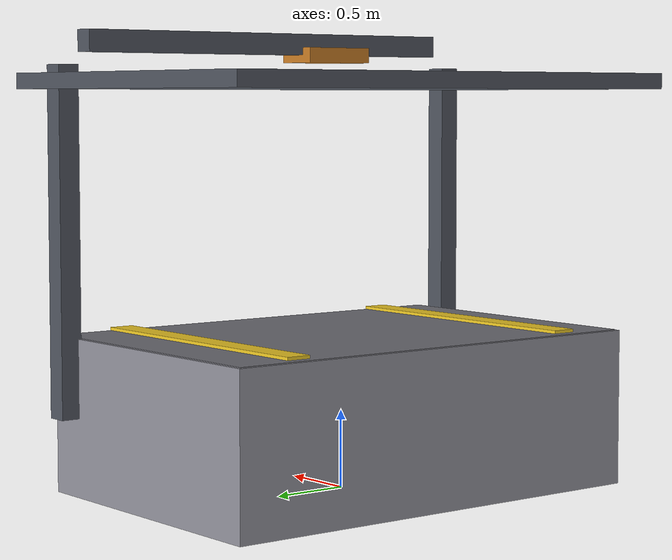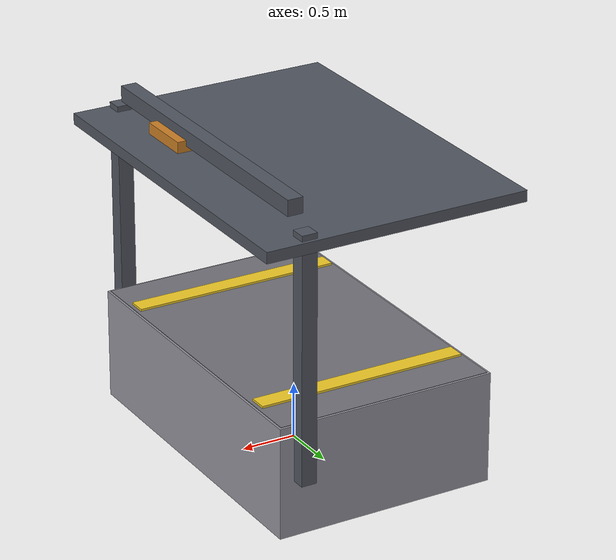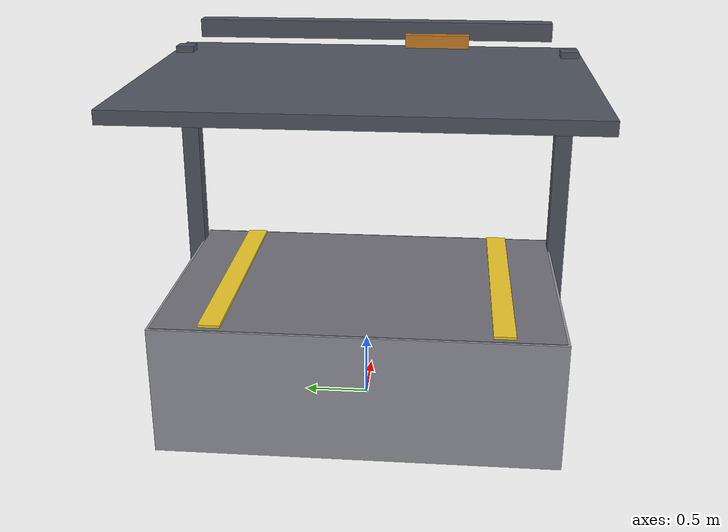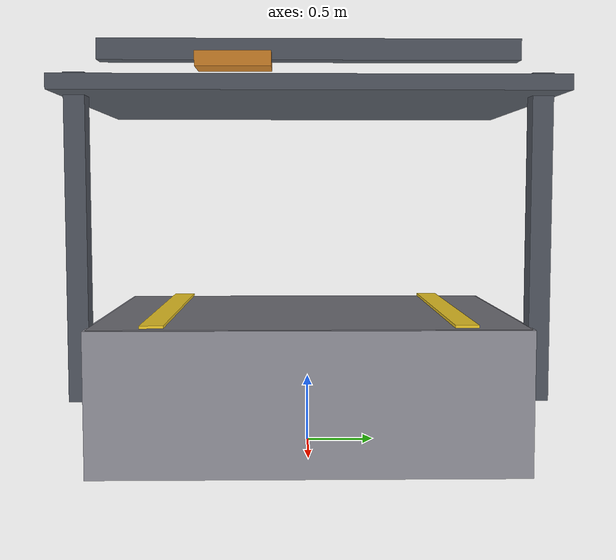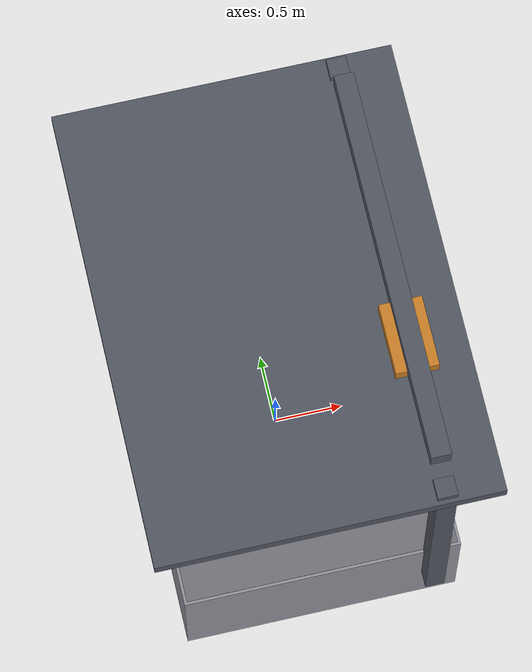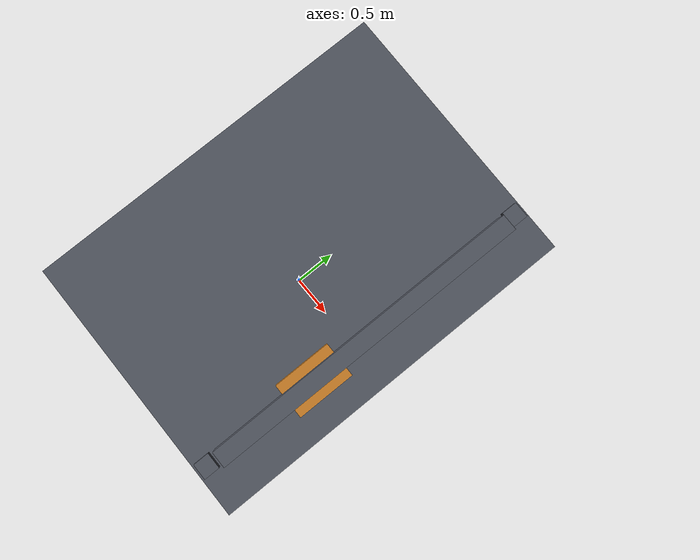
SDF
<?xml version="1.0" ?>
<sdf version="1.6">
<model name="loading_dock">
  <static>true</static>
  <link name="link">
    <collision name="platform">
      <pose>0 0 0.5 0 0 0</pose>
      <geometry><box><size>2.0 3.0 1.0</size></box></geometry>
    </collision>
<visual name="platform_vis">
<pose>0 0 0.5 0 0 0</pose>
<geometry><box><size>2.0 3.0 1.0</size></box></geometry>
<material><ambient>0.42 0.42 0.45 1</ambient>
<diffuse>0.58 0.58 0.62 1</diffuse>
<specular>0.2 0.2 0.2 1</specular></material>
</visual>
<visual name="platform_top">
<pose>0 0 1.0 0 0 0</pose>
<geometry><box><size>1.96 2.96 0.01</size></box></geometry>
<material><ambient>0.3 0.3 0.32 1</ambient>
<diffuse>0.45 0.45 0.48 1</diffuse>
<specular>0.1 0.1 0.1 1</specular></material>
</visual>
<visual name="stripe1">
<pose>0 -1.05 1.02 0 0 0</pose>
<geometry><box><size>1.9 0.16 0.02</size></box></geometry>
<material><ambient>0.8 0.65 0.1 1</ambient>
<diffuse>0.95 0.8 0.15 1</diffuse>
<specular>0.3 0.25 0.1 1</specular></material>
</visual>
<visual name="stripe2">
<pose>0 1.05 1.02 0 0 0</pose>
<geometry><box><size>1.9 0.16 0.02</size></box></geometry>
<material><ambient>0.8 0.65 0.1 1</ambient>
<diffuse>0.95 0.8 0.15 1</diffuse>
<specular>0.3 0.25 0.1 1</specular></material>
</visual>
<visual name="canopy">
<pose>0 0 2.6 0 0 0</pose>
<geometry><box><size>2.4 3.3 0.1</size></box></geometry>
<material><ambient>0.15 0.16 0.18 1</ambient>
<diffuse>0.32 0.34 0.38 1</diffuse>
<specular>0.2 0.2 0.2 1</specular></material>
</visual>
<visual name="doorpost_left">
<pose>0.8 -1.55 1.6 0 0 0</pose>
<geometry><box><size>0.14 0.14 2.2</size></box></geometry>
<material><ambient>0.15 0.16 0.18 1</ambient>
<diffuse>0.32 0.34 0.38 1</diffuse>
<specular>0.2 0.2 0.2 1</specular></material>
</visual>
<visual name="doorpost_right">
<pose>0.8 1.55 1.6 0 0 0</pose>
<geometry><box><size>0.14 0.14 2.2</size></box></geometry>
<material><ambient>0.15 0.16 0.18 1</ambient>
<diffuse>0.32 0.34 0.38 1</diffuse>
<specular>0.2 0.2 0.2 1</specular></material>
</visual>
<visual name="door_header">
<pose>0.8 0 2.85 0 0 0</pose>
<geometry><box><size>0.14 2.8 0.14</size></box></geometry>
<material><ambient>0.15 0.16 0.18 1</ambient>
<diffuse>0.32 0.34 0.38 1</diffuse>
<specular>0.2 0.2 0.2 1</specular></material>
</visual>
<visual name="dock_light">
<pose>0.8 -0.5 2.78 0 0 0</pose>
<geometry><box><size>0.3 0.5 0.1</size></box></geometry>
<material><ambient>0.5 0.3 0.08 1</ambient>
<diffuse>0.8 0.5 0.15 1</diffuse>
<specular>0.1 0.1 0.1 1</specular>
<emissive>0.95 0.6 0.2 1</emissive></material>
</visual>
  </link>
</model>
</sdf>
